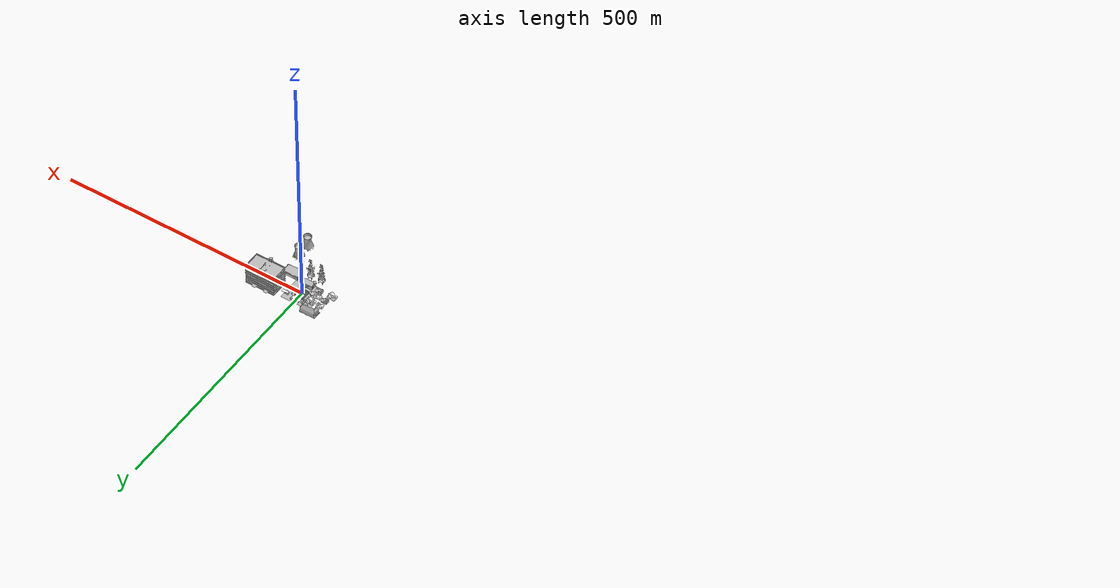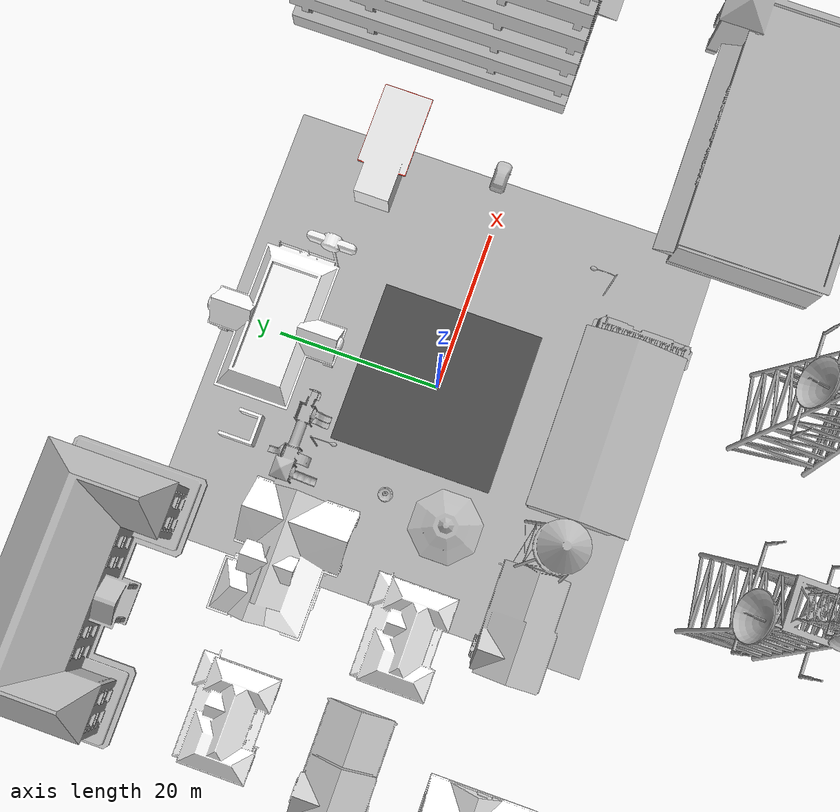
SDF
<sdf version="1.7">
 <world name="default">
  <plugin name="mrs_gazebo_static_transform_republisher_plugin" filename="libMrsGazeboCommonResources_StaticTransformRepublisher.so"/>
  <spherical_coordinates>
   <surface_model>EARTH_WGS84</surface_model>
   <latitude_deg>47.3977</latitude_deg>
   <longitude_deg>8.54559</longitude_deg>
   <elevation>0</elevation>
   <heading_deg>0</heading_deg>
  </spherical_coordinates>
  <physics name="default_physics" default="0" type="ode">
   <ode>
    <solver>
     <type>quick</type>
     <iters>10</iters>
     <sor>1.3</sor>
     <use_dynamic_moi_rescaling>0</use_dynamic_moi_rescaling>
    </solver>
    <constraints>
     <cfm>0</cfm>
     <erp>0.2</erp>
     <contact_max_correcting_vel>1000</contact_max_correcting_vel>
     <contact_surface_layer>0.001</contact_surface_layer>
    </constraints>
   </ode>
   <max_step_size>0.004</max_step_size>
   <real_time_factor>1</real_time_factor>
   <real_time_update_rate>250</real_time_update_rate>
  </physics>
  <scene><shadows>false</shadows><ambient>0.4 0.4 0.4 1</ambient><background>0.7 0.7 0.7 1</background></scene>
  <light name="sun" type="directional">
   <pose>0 0 1000 0.4 0.2 0</pose>
   <diffuse>1 1 1 1</diffuse>
   <specular>0.6 0.6 0.6 1</specular>
   <direction>0.1 0.1 -0.9</direction>
   <attenuation>
    <range>20</range>
    <constant>0.5</constant>
    <linear>0.01</linear>
    <quadratic>0.001</quadratic>
   </attenuation>
   <spot><inner_angle>0</inner_angle><outer_angle>0</outer_angle><falloff>0</falloff></spot>
  </light>
  <model name="ground_plane">
   <static>1</static>
   <link name="link">
    <collision name="collision">
     <geometry><plane><normal>0 0 1</normal><size>250 250</size></plane></geometry>
     <surface><friction><ode><mu>1</mu><mu2>1</mu2></ode></friction></surface>
    </collision>
    <visual name="grass">
     <cast_shadows>0</cast_shadows>
     <geometry><mesh><uri>file://grass_plane/meshes/grass_plane.dae</uri></mesh></geometry>
    </visual>
   </link>
  </model>
  <model name="the_void">
   <static>1</static>
   <link name="link">
    <pose>0 0 0.1 0 -0 0</pose>
    <visual name="the_void">
     <pose>0 0 2 0 -0 0</pose>
     <geometry><sphere><radius>0.25</radius></sphere></geometry>
     <material>
      <script><uri>file://media/materials/scripts/Gazebo.material</uri><name>Gazebo/Black</name></script>
     </material>
    </visual>
   </link>
   <pose>-1000 -1000 0 0 -0 0</pose>
  </model>
  <plugin name="mrs_gazebo_rviz_cam_synchronizer" filename="libMrsGazeboCommonResources_RvizCameraSynchronizer.so">
   <target_frame_id>gazebo_user_camera</target_frame_id>
   <world_origin_frame_id>uav1/gps_origin</world_origin_frame_id>
   <frame_to_follow>uav1</frame_to_follow>
  </plugin>
  <gravity>0 0 -9.8066</gravity>
  <magnetic_field>6e-06 2.3e-05 -4.2e-05</magnetic_field>
  <atmosphere type="adiabatic"/>
  <model name="fire_station">
   <static>1</static>
   <link name="link">
    <collision name="main">
     <pose>0 -0.135 5 0 -0 0</pose>
     <geometry><box><size>19.98 9.68 10</size></box></geometry>
    </collision>
    <collision name="front_top">
     <pose>0 4.957 7 0 -0 0</pose>
     <geometry><box><size>20 0.515 6</size></box></geometry>
    </collision>
    <collision name="column_0">
     <pose>9.333 4.957 2 0 -0 0</pose>
     <geometry><box><size>1.315 0.515 4</size></box></geometry>
    </collision>
    <collision name="column_1">
     <pose>3.33 4.957 2 0 -0 0</pose>
     <geometry><box><size>2.63 0.515 4</size></box></geometry>
    </collision>
    <collision name="column_2">
     <pose>-3.33 4.957 2 0 -0 0</pose>
     <geometry><box><size>2.63 0.515 4</size></box></geometry>
    </collision>
    <collision name="column_3">
     <pose>-9.333 4.957 2 0 -0 0</pose>
     <geometry><box><size>1.315 0.515 4</size></box></geometry>
    </collision>
    <collision name="roof_back">
     <pose>0 -2.742 10.467 0.25 -0 0</pose>
     <geometry><box><size>21.47 6.12 0.28</size></box></geometry>
    </collision>
    <collision name="roof_front">
     <pose>0 3.12 10.467 -0.25 0 0</pose>
     <geometry><box><size>21.47 6.12 0.28</size></box></geometry>
    </collision>
    <collision name="roof_base">
     <pose>0 0.188 9.705 0 -0 0</pose>
     <geometry><box><size>21.47 11.86 0.28</size></box></geometry>
    </collision>
    <collision name="roof_filling_0">
     <pose>0 0.188 9.985 0 -0 0</pose>
     <geometry><box><size>21.47 9.53 0.28</size></box></geometry>
    </collision>
    <collision name="roof_filling_1">
     <pose>0 0.188 10.14 0 -0 0</pose>
     <geometry><box><size>21.47 8.41 0.28</size></box></geometry>
    </collision>
    <collision name="roof_filling_2">
     <pose>0 0.188 10.42 0 -0 0</pose>
     <geometry><box><size>21.47 6.25 0.28</size></box></geometry>
    </collision>
    <collision name="roof_filling_3">
     <pose>0 0.188 10.7 0 -0 0</pose>
     <geometry><box><size>21.47 4.05 0.28</size></box></geometry>
    </collision>
    <collision name="roof_filling_4">
     <pose>0 0.188 10.98 0 -0 0</pose>
     <geometry><box><size>21.47 1.83 0.28</size></box></geometry>
    </collision>
    <visual name="visual">
     <geometry><mesh><uri>model://fire_station/meshes/fire_station.dae</uri></mesh></geometry>
    </visual>
   </link>
   <pose>0 -20 0 0 -0 0</pose>
  </model>
  <model name="fire_truck">
   <static>1</static>
   <link name="link">
    <collision name="collision">
     <geometry>
      <mesh><scale>0.1 0.1 0.1</scale><uri>model://fire_truck/meshes/fire_truck.obj</uri></mesh>
     </geometry>
    </collision>
    <visual name="visual">
     <geometry>
      <mesh><scale>0.1 0.1 0.1</scale><uri>model://fire_truck/meshes/fire_truck.obj</uri></mesh>
     </geometry>
    </visual>
   </link>
   <pose>13 -21 0 0 -0 0</pose>
  </model>
  <model name="fountain">
   <static>1</static>
   <link name="link">
    <collision name="collision">
     <geometry><mesh><uri>model://fountain/meshes/fountain.dae</uri></mesh></geometry>
    </collision>
    <visual name="visual">
     <geometry><mesh><uri>model://fountain/meshes/fountain.dae</uri></mesh></geometry>
    </visual>
   </link>
   <pose>-14.2785 1.47663 0 0 -0 0</pose>
  </model>
  <model name="gazebo">
   <static>1</static>
   <link name="link">
    <collision name="collision">
     <geometry><mesh><scale>3 3 2.5</scale><uri>model://gazebo/meshes/gazebo.dae</uri></mesh></geometry>
    </collision>
    <visual name="visual">
     <geometry><mesh><scale>3 3 2.5</scale><uri>model://gazebo/meshes/gazebo.dae</uri></mesh></geometry>
    </visual>
   </link>
   <pose>-15.7512 -6.42635 0 0 -0 0</pose>
  </model>
  <model name="cafe_table">
   <static>1</static>
   <link name="link">
    <collision name="surface">
     <pose>0 0 0.755 0 -0 0</pose>
     <geometry><box><size>0.913 0.913 0.04</size></box></geometry>
    </collision>
    <collision name="column">
     <pose>0 0 0.37 0 -0 0</pose>
     <geometry><box><size>0.042 0.042 0.74</size></box></geometry>
    </collision>
    <collision name="base">
     <pose>0 0 0.02 0 -0 0</pose>
     <geometry><box><size>0.56 0.56 0.04</size></box></geometry>
    </collision>
    <visual name="visual">
     <geometry><mesh><uri>model://cafe_table/meshes/cafe_table.dae</uri></mesh></geometry>
    </visual>
   </link>
   <pose>-15.7741 -6.42405 0.35 0 -0 0</pose>
  </model>
  <model name="beer">
   <link name="link">
    <pose>0 0 0.115 0 -0 0</pose>
    <inertial>
     <mass>0.39</mass>
     <inertia><ixx>0.00058</ixx><ixy>0</ixy><ixz>0</ixz><iyy>0.00058</iyy><iyz>0</iyz><izz>0.00019</izz></inertia>
    </inertial>
    <collision name="collision">
     <geometry><cylinder><radius>0.055</radius><length>0.23</length></cylinder></geometry>
    </collision>
    <visual name="visual">
     <geometry><cylinder><radius>0.055</radius><length>0.23</length></cylinder></geometry>
     <material>
      <script>
       <uri>model://beer/materials/scripts</uri>
       <uri>model://beer/materials/textures</uri>
       <name>Beer/Diffuse</name>
      </script>
     </material>
    </visual>
   </link>
   <pose>-16.047 -6.7254 1.1 0 -0 0</pose>
  </model>
  <model name="asphalt_plane">
   <static>1</static>
   <link name="link">
    <collision name="collision"><geometry><box><size>20 20 0.1</size></box></geometry></collision>
    <visual name="visual">
     <cast_shadows>0</cast_shadows>
     <geometry><box><size>20 20 0.1</size></box></geometry>
     <material>
      <script>
       <uri>model://asphalt_plane/materials/scripts</uri>
       <uri>model://asphalt_plane/materials/textures</uri>
       <name>vrc/asphalt</name>
      </script>
     </material>
    </visual>
   </link>
   <pose>0.013538 0.012576 0 0 -0 0</pose>
  </model>
  <model name="Fast Food">
   <static>1</static>
   <link name="link">
    <pose>0 0 3.15931 0 -0 0</pose>
    <collision name="collision">
     <geometry><mesh><scale>3 3 2</scale><uri>model://fast_food/meshes/fast_food.dae</uri></mesh></geometry>
    </collision>
    <visual name="visual">
     <geometry><mesh><scale>3 3 2</scale><uri>model://fast_food/meshes/fast_food.dae</uri></mesh></geometry>
     <material>
      <script>
       <uri>model://fast_food/materials/scripts</uri>
       <uri>model://fast_food/materials/textures</uri>
       <name>FastFood/Diffuse</name>
      </script>
      <shader type="normal_map_tangent_space"><normal_map>FastFood_Normal.png</normal_map></shader>
     </material>
    </visual>
   </link>
   <pose>0 20 0 0 -0 0</pose>
  </model>
  <model name="Gas Station">
   <static>1</static>
   <link name="link">
    <collision name="collision">
     <geometry><mesh><uri>model://gas_station/meshes/gas_station.dae</uri></mesh></geometry>
    </collision>
    <visual name="visual">
     <geometry><mesh><uri>model://gas_station/meshes/gas_station.dae</uri></mesh></geometry>
     <material>
      <script>
       <uri>model://gas_station/materials/scripts</uri>
       <uri>model://gas_station/materials/textures</uri>
       <name>GasStation/Diffuse</name>
      </script>
      <shader type="normal_map_tangent_space"><normal_map>GasStation_Normal.png</normal_map></shader>
     </material>
    </visual>
   </link>
   <pose>25 15 0 0 -0 0</pose>
  </model>
  <model name="grocery_store">
   <static>1</static>
   <link name="link">
    <collision name="collision">
     <pose>0 0 4.04605 0 -0 0</pose>
     <geometry><box><size>32.1985 17.5425 8.09209</size></box></geometry>
    </collision>
    <visual name="visual">
     <pose>0 -1.96155 0 0 -0 0</pose>
     <geometry><mesh><uri>model://grocery_store/meshes/grocery_store.dae</uri></mesh></geometry>
    </visual>
   </link>
   <pose>40 -30 0 0 -0 0</pose>
  </model>
  <model name="hatchback">
   <static>1</static>
   <link name="link">
    <collision name="collision">
     <pose>0 0 0 0 -0 1.5708</pose>
     <geometry>
      <mesh><scale>0.0254 0.0254 0.0254</scale><uri>model://hatchback/meshes/hatchback.obj</uri></mesh>
     </geometry>
    </collision>
    <visual name="visual">
     <pose>0 0 0 0 -0 1.5708</pose>
     <geometry>
      <mesh><scale>0.0254 0.0254 0.0254</scale><uri>model://hatchback/meshes/hatchback.obj</uri></mesh>
     </geometry>
    </visual>
   </link>
   <pose>26.9267 1.25057 0 0 -0 0</pose>
  </model>
  <model name="House 1">
   <static>1</static>
   <link name="link">
    <collision name="collision">
     <geometry><mesh><uri>model://house_1/meshes/house_1.dae</uri><scale>1.5 1.5 1.5</scale></mesh></geometry>
    </collision>
    <visual name="visual">
     <geometry><mesh><uri>model://house_1/meshes/house_1.dae</uri><scale>1.5 1.5 1.5</scale></mesh></geometry>
     <material>
      <script>
       <uri>model://house_1/materials/scripts</uri>
       <uri>model://house_1/materials/textures</uri>
       <name>House_1/Diffuse</name>
      </script>
      <shader type="normal_map_tangent_space"><normal_map>House_1_Normal.png</normal_map></shader>
     </material>
    </visual>
   </link>
   <pose>-25.1233 10.1851 0 0 -0 0</pose>
  </model>
  <model name="House 2">
   <static>1</static>
   <link name="link">
    <collision name="collision">
     <geometry><mesh><uri>model://house_2/meshes/house_2.dae</uri><scale>1.5 1.5 1.5</scale></mesh></geometry>
    </collision>
    <visual name="visual">
     <geometry><mesh><uri>model://house_2/meshes/house_2.dae</uri><scale>1.5 1.5 1.5</scale></mesh></geometry>
     <material>
      <script>
       <uri>model://house_2/materials/scripts</uri>
       <uri>model://house_2/materials/textures</uri>
       <uri>model://house_1/materials/textures</uri>
       <name>House_2/Diffuse</name>
      </script>
      <shader type="normal_map_tangent_space">
       <normal_map>model://house_1/materials/textures/House_1_Normal.png</normal_map>
      </shader>
     </material>
    </visual>
   </link>
   <pose>-30.0978 -6.56219 0 0 -0 0</pose>
  </model>
  <model name="House 3">
   <static>1</static>
   <link name="link">
    <collision name="collision">
     <geometry><mesh><uri>model://house_3/meshes/house_3.dae</uri><scale>1.5 1.5 1.5</scale></mesh></geometry>
    </collision>
    <visual name="visual">
     <geometry><mesh><uri>model://house_3/meshes/house_3.dae</uri><scale>1.5 1.5 1.5</scale></mesh></geometry>
     <material>
      <script>
       <uri>model://house_3/materials/scripts</uri>
       <uri>model://house_3/materials/textures</uri>
       <uri>model://house_1/materials/textures</uri>
       <name>House_3/Diffuse</name>
      </script>
      <shader type="normal_map_tangent_space">
       <normal_map>model://house_1/materials/textures/House_1_Normal.png</normal_map>
      </shader>
     </material>
    </visual>
   </link>
   <pose>-22.9361 -18.1584 0 0 -0 0</pose>
  </model>
  <model name="House 1_0">
   <static>1</static>
   <link name="link">
    <collision name="collision">
     <geometry><mesh><uri>model://house_1/meshes/house_1.dae</uri><scale>1.5 1.5 1.5</scale></mesh></geometry>
    </collision>
    <visual name="visual">
     <geometry><mesh><uri>model://house_1/meshes/house_1.dae</uri><scale>1.5 1.5 1.5</scale></mesh></geometry>
     <material>
      <script>
       <uri>model://house_1/materials/scripts</uri>
       <uri>model://house_1/materials/textures</uri>
       <name>House_1/Diffuse</name>
      </script>
      <shader type="normal_map_tangent_space"><normal_map>House_1_Normal.png</normal_map></shader>
     </material>
    </visual>
   </link>
   <pose>-50 -20 0 0 -0 0</pose>
  </model>
  <model name="House 2_0">
   <static>1</static>
   <link name="link">
    <collision name="collision">
     <geometry><mesh><uri>model://house_2/meshes/house_2.dae</uri><scale>1.5 1.5 1.5</scale></mesh></geometry>
    </collision>
    <visual name="visual">
     <geometry><mesh><uri>model://house_2/meshes/house_2.dae</uri><scale>1.5 1.5 1.5</scale></mesh></geometry>
     <material>
      <script>
       <uri>model://house_2/materials/scripts</uri>
       <uri>model://house_2/materials/textures</uri>
       <uri>model://house_1/materials/textures</uri>
       <name>House_2/Diffuse</name>
      </script>
      <shader type="normal_map_tangent_space">
       <normal_map>model://house_1/materials/textures/House_1_Normal.png</normal_map>
      </shader>
     </material>
    </visual>
   </link>
   <pose>-45.2458 9.32868 0 0 -0 0</pose>
  </model>
  <model name="House 3_0">
   <static>1</static>
   <link name="link">
    <collision name="collision">
     <geometry><mesh><uri>model://house_3/meshes/house_3.dae</uri><scale>1.5 1.5 1.5</scale></mesh></geometry>
    </collision>
    <visual name="visual">
     <geometry><mesh><uri>model://house_3/meshes/house_3.dae</uri><scale>1.5 1.5 1.5</scale></mesh></geometry>
     <material>
      <script>
       <uri>model://house_3/materials/scripts</uri>
       <uri>model://house_3/materials/textures</uri>
       <uri>model://house_1/materials/textures</uri>
       <name>House_3/Diffuse</name>
      </script>
      <shader type="normal_map_tangent_space">
       <normal_map>model://house_1/materials/textures/House_1_Normal.png</normal_map>
      </shader>
     </material>
    </visual>
   </link>
   <pose>-44.3464 -4.43058 0 0 -0 0</pose>
  </model>
  <model name="Lamp Post">
   <static>1</static>
   <link name="link">
    <collision name="collision">
     <geometry><mesh><uri>model://lamp_post/meshes/lamp_post.dae</uri><scale>3 3 3</scale></mesh></geometry>
    </collision>
    <visual name="visual">
     <geometry><mesh><uri>model://lamp_post/meshes/lamp_post.dae</uri><scale>3 3 3</scale></mesh></geometry>
    </visual>
   </link>
   <pose>-11.4554 11.1392 0 0 -0 0</pose>
  </model>
  <model name="Lamp Post_0">
   <static>1</static>
   <link name="link">
    <collision name="collision">
     <geometry><mesh><uri>model://lamp_post/meshes/lamp_post.dae</uri><scale>3 3 3</scale></mesh></geometry>
    </collision>
    <visual name="visual">
     <geometry><mesh><uri>model://lamp_post/meshes/lamp_post.dae</uri><scale>3 3 3</scale></mesh></geometry>
    </visual>
   </link>
   <pose>17.54 -15.3026 0 0 -0 -3.08318</pose>
  </model>
  <model name="parking_garage">
   <static>1</static>
   <link name="link">
    <collision name="collision">
     <geometry><mesh><uri>model://parking_garage/meshes/parking_garage.dae</uri></mesh></geometry>
    </collision>
    <visual name="visual">
     <geometry><mesh><uri>model://parking_garage/meshes/parking_garage.dae</uri></mesh></geometry>
    </visual>
   </link>
   <pose>67.9448 14.4595 0 0 -0 0</pose>
  </model>
  <model name="playground">
   <static>1</static>
   <link name="link">
    <collision name="collision">
     <geometry><mesh><uri>model://playground/meshes/playground.dae</uri></mesh></geometry>
    </collision>
    <visual name="visual">
     <geometry><mesh><uri>model://playground/meshes/playground.dae</uri></mesh></geometry>
    </visual>
   </link>
   <pose>-11.1403 13.0938 0 0 -0 0</pose>
  </model>
  <model name="radio_tower">
   <static>1</static>
   <link name="link">
    <collision name="collision">
     <geometry><mesh><uri>model://radio_tower/meshes/radio_tower.dae</uri></mesh></geometry>
    </collision>
    <visual name="visual">
     <geometry><mesh><uri>model://radio_tower/meshes/radio_tower.dae</uri></mesh></geometry>
    </visual>
   </link>
   <pose>9.35619 -39.9519 0 0 -0 0</pose>
  </model>
  <model name="reactor">
   <static>1</static>
   <link name="link">
    <collision name="collision">
     <geometry><mesh><uri>model://reactor/meshes/reactor.dae</uri></mesh></geometry>
    </collision>
    <visual name="visual"><geometry><mesh><uri>model://reactor/meshes/reactor.dae</uri></mesh></geometry></visual>
   </link>
   <pose>56.3835 -98.4708 0 0 -0 0</pose>
  </model>
  <model name="reactor_0">
   <static>1</static>
   <link name="link">
    <collision name="collision">
     <geometry><mesh><uri>model://reactor/meshes/reactor.dae</uri></mesh></geometry>
    </collision>
    <visual name="visual"><geometry><mesh><uri>model://reactor/meshes/reactor.dae</uri></mesh></geometry></visual>
   </link>
   <pose>56.1922 -71.2118 0 0 -0 0</pose>
  </model>
  <model name="radio_tower_0">
   <static>1</static>
   <link name="link">
    <collision name="collision">
     <geometry><mesh><uri>model://radio_tower/meshes/radio_tower.dae</uri></mesh></geometry>
    </collision>
    <visual name="visual">
     <geometry><mesh><uri>model://radio_tower/meshes/radio_tower.dae</uri></mesh></geometry>
    </visual>
   </link>
   <pose>-13.203 -40.7121 0 0 -0 0</pose>
  </model>
  <model name="school">
   <static>1</static>
   <link name="link">
    <collision name="collision">
     <geometry><mesh><uri>model://school/meshes/school.dae</uri></mesh></geometry>
    </collision>
    <visual name="visual"><geometry><mesh><uri>model://school/meshes/school.dae</uri></mesh></geometry></visual>
   </link>
   <pose>-36.1837 32.938 0 0 -0 0</pose>
  </model>
  <model name="tower_crane">
   <static>1</static>
   <link name="link">
    <collision name="collision">
     <geometry><mesh><uri>model://tower_crane/meshes/tower_crane.dae</uri></mesh></geometry>
    </collision>
    <visual name="visual">
     <geometry><mesh><uri>model://tower_crane/meshes/tower_crane.dae</uri></mesh></geometry>
    </visual>
   </link>
   <pose>34.4365 -46.1087 0 0 -0 0</pose>
  </model>
  <model name="water_tower">
   <static>1</static>
   <link name="link">
    <collision name="collision">
     <geometry><mesh><uri>model://water_tower/meshes/water_tower.dae</uri></mesh></geometry>
    </collision>
    <visual name="visual">
     <geometry><mesh><uri>model://water_tower/meshes/water_tower.dae</uri></mesh></geometry>
    </visual>
   </link>
   <pose>-14.5623 -18.0989 0 0 -0 0</pose>
  </model>
 </world>
</sdf>
